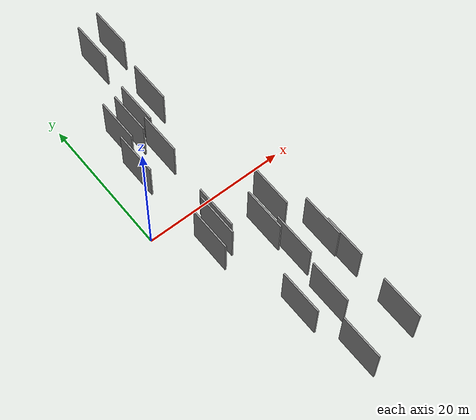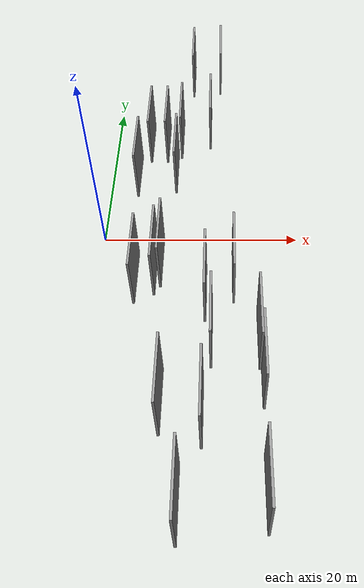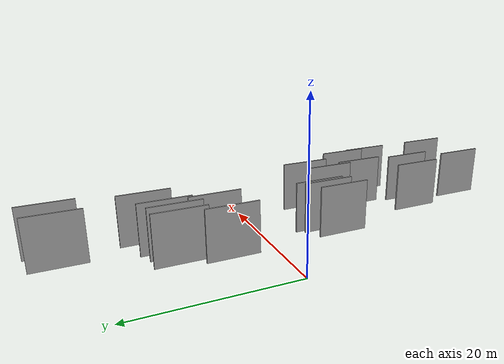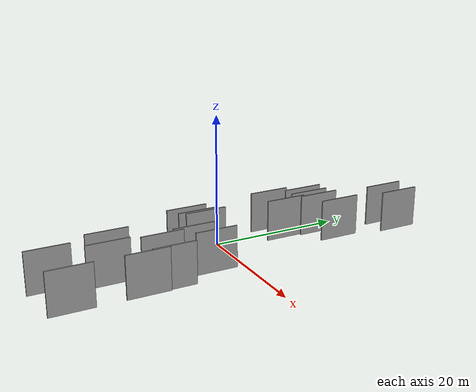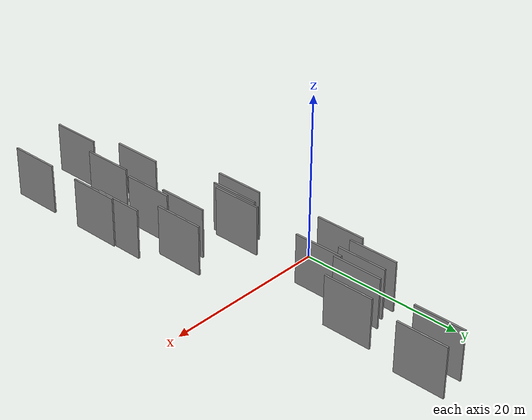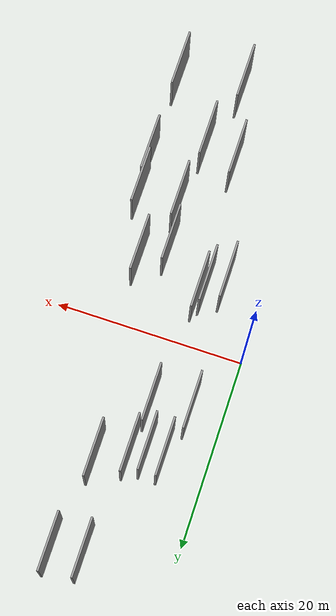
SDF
<sdf version="1.6">
 <world name="default">
  <scene>
   <sky><clouds><speed>12</speed></clouds></sky>
   <ambient>0.4 0.4 0.4 1</ambient>
   <background>0.7 0.7 0.7 1</background>
   <shadows>1</shadows>
  </scene>
  <gravity>0 0 -9.8066</gravity>
  <magnetic_field>6e-06 2.3e-05 -4.2e-05</magnetic_field>
  <physics default="0" name="default_physics" type="ode">
   <ode>
    <solver>
     <type>quick</type>
     <iters>10</iters>
     <sor>1.0</sor>
     <use_dynamic_moi_rescaling>0</use_dynamic_moi_rescaling>
    </solver>
    <constraints>
     <cfm>0</cfm>
     <erp>0.2</erp>
     <contact_max_correcting_vel>100</contact_max_correcting_vel>
     <contact_surface_layer>0.001</contact_surface_layer>
    </constraints>
   </ode>
   <max_step_size>0.004</max_step_size>
   <real_time_factor>1</real_time_factor>
   <real_time_update_rate>250</real_time_update_rate>
  </physics>
  <light name="sun" type="directional">
   <pose>0 0 10 0 0 0</pose>
   <diffuse>0.8 0.8 0.8 1</diffuse>
   <specular>0.2 0.2 0.2 1</specular>
   <attenuation>
    <range>1000</range>
    <constant>0.9</constant>
    <linear>0.01</linear>
    <quadratic>0.001</quadratic>
   </attenuation>
   <direction>-0.5 0.1 -0.9</direction>
  </light>
  <model name="grey_wall_1">
   <static>1</static>
   <pose>10.5334 -20.5578 2.5 0.000000 0.000000 1.570796</pose>
   <link name="link">
    <pose>0 0 3.00 0 0 0</pose>
    <collision name="collision"><geometry><box><size>6.00 0.2 6.00</size></box></geometry></collision>
    <visual name="visual">
     <cast_shadows>0</cast_shadows>
     <geometry><box><size>6.00 0.2 6.00</size></box></geometry>
     <material>
      <script>
       <uri>model://grey_wall/materials/scripts</uri>
       <uri>model://grey_wall/materials/textures</uri>
       <name>vrc/grey_wall</name>
      </script>
     </material>
    </visual>
   </link>
  </model>
  <model name="grey_wall_2">
   <static>1</static>
   <pose>7.7488 12.8245 2.5 0.000000 0.000000 1.570796</pose>
   <link name="link">
    <pose>0 0 3.00 0 0 0</pose>
    <collision name="collision"><geometry><box><size>6.00 0.2 6.00</size></box></geometry></collision>
    <visual name="visual">
     <cast_shadows>0</cast_shadows>
     <geometry><box><size>6.00 0.2 6.00</size></box></geometry>
     <material>
      <script>
       <uri>model://grey_wall/materials/scripts</uri>
       <uri>model://grey_wall/materials/textures</uri>
       <name>vrc/grey_wall</name>
      </script>
     </material>
    </visual>
   </link>
  </model>
  <model name="grey_wall_3">
   <static>1</static>
   <pose>8.8190 23.7844 2.5 0.000000 0.000000 1.570796</pose>
   <link name="link">
    <pose>0 0 3.00 0 0 0</pose>
    <collision name="collision"><geometry><box><size>6.00 0.2 6.00</size></box></geometry></collision>
    <visual name="visual">
     <cast_shadows>0</cast_shadows>
     <geometry><box><size>6.00 0.2 6.00</size></box></geometry>
     <material>
      <script>
       <uri>model://grey_wall/materials/scripts</uri>
       <uri>model://grey_wall/materials/textures</uri>
       <name>vrc/grey_wall</name>
      </script>
     </material>
    </visual>
   </link>
  </model>
  <model name="grey_wall_4">
   <static>1</static>
   <pose>3.9841 -6.7538 2.5 0.000000 0.000000 1.570796</pose>
   <link name="link">
    <pose>0 0 3.00 0 0 0</pose>
    <collision name="collision"><geometry><box><size>6.00 0.2 6.00</size></box></geometry></collision>
    <visual name="visual">
     <cast_shadows>0</cast_shadows>
     <geometry><box><size>6.00 0.2 6.00</size></box></geometry>
     <material>
      <script>
       <uri>model://grey_wall/materials/scripts</uri>
       <uri>model://grey_wall/materials/textures</uri>
       <name>vrc/grey_wall</name>
      </script>
     </material>
    </visual>
   </link>
  </model>
  <model name="grey_wall_5">
   <static>1</static>
   <pose>10.9122 14.3691 2.5 0.000000 0.000000 1.570796</pose>
   <link name="link">
    <pose>0 0 3.00 0 0 0</pose>
    <collision name="collision"><geometry><box><size>6.00 0.2 6.00</size></box></geometry></collision>
    <visual name="visual">
     <cast_shadows>0</cast_shadows>
     <geometry><box><size>6.00 0.2 6.00</size></box></geometry>
     <material>
      <script>
       <uri>model://grey_wall/materials/scripts</uri>
       <uri>model://grey_wall/materials/textures</uri>
       <name>vrc/grey_wall</name>
      </script>
     </material>
    </visual>
   </link>
  </model>
  <model name="grey_wall_6">
   <static>1</static>
   <pose>13.2713 -6.6503 2.5 0.000000 0.000000 1.570796</pose>
   <link name="link">
    <pose>0 0 3.00 0 0 0</pose>
    <collision name="collision"><geometry><box><size>6.00 0.2 6.00</size></box></geometry></collision>
    <visual name="visual">
     <cast_shadows>0</cast_shadows>
     <geometry><box><size>6.00 0.2 6.00</size></box></geometry>
     <material>
      <script>
       <uri>model://grey_wall/materials/scripts</uri>
       <uri>model://grey_wall/materials/textures</uri>
       <name>vrc/grey_wall</name>
      </script>
     </material>
    </visual>
   </link>
  </model>
  <model name="grey_wall_7">
   <static>1</static>
   <pose>15.6652 -17.1908 2.5 0.000000 0.000000 1.570796</pose>
   <link name="link">
    <pose>0 0 3.00 0 0 0</pose>
    <collision name="collision"><geometry><box><size>6.00 0.2 6.00</size></box></geometry></collision>
    <visual name="visual">
     <cast_shadows>0</cast_shadows>
     <geometry><box><size>6.00 0.2 6.00</size></box></geometry>
     <material>
      <script>
       <uri>model://grey_wall/materials/scripts</uri>
       <uri>model://grey_wall/materials/textures</uri>
       <name>vrc/grey_wall</name>
      </script>
     </material>
    </visual>
   </link>
  </model>
  <model name="grey_wall_8">
   <static>1</static>
   <pose>15.4649 -13.5422 2.5 0.000000 0.000000 1.570796</pose>
   <link name="link">
    <pose>0 0 3.00 0 0 0</pose>
    <collision name="collision"><geometry><box><size>6.00 0.2 6.00</size></box></geometry></collision>
    <visual name="visual">
     <cast_shadows>0</cast_shadows>
     <geometry><box><size>6.00 0.2 6.00</size></box></geometry>
     <material>
      <script>
       <uri>model://grey_wall/materials/scripts</uri>
       <uri>model://grey_wall/materials/textures</uri>
       <name>vrc/grey_wall</name>
      </script>
     </material>
    </visual>
   </link>
  </model>
  <model name="grey_wall_9">
   <static>1</static>
   <pose>8.7912 -27.8164 2.5 0.000000 0.000000 1.570796</pose>
   <link name="link">
    <pose>0 0 3.00 0 0 0</pose>
    <collision name="collision"><geometry><box><size>6.00 0.2 6.00</size></box></geometry></collision>
    <visual name="visual">
     <cast_shadows>0</cast_shadows>
     <geometry><box><size>6.00 0.2 6.00</size></box></geometry>
     <material>
      <script>
       <uri>model://grey_wall/materials/scripts</uri>
       <uri>model://grey_wall/materials/textures</uri>
       <name>vrc/grey_wall</name>
      </script>
     </material>
    </visual>
   </link>
  </model>
  <model name="grey_wall_10">
   <static>1</static>
   <pose>10.6417 -8.6796 2.5 0.000000 0.000000 1.570796</pose>
   <link name="link">
    <pose>0 0 3.00 0 0 0</pose>
    <collision name="collision"><geometry><box><size>6.00 0.2 6.00</size></box></geometry></collision>
    <visual name="visual">
     <cast_shadows>0</cast_shadows>
     <geometry><box><size>6.00 0.2 6.00</size></box></geometry>
     <material>
      <script>
       <uri>model://grey_wall/materials/scripts</uri>
       <uri>model://grey_wall/materials/textures</uri>
       <name>vrc/grey_wall</name>
      </script>
     </material>
    </visual>
   </link>
  </model>
  <model name="grey_wall_11">
   <static>1</static>
   <pose>12.0382 24.2024 2.5 0.000000 0.000000 1.570796</pose>
   <link name="link">
    <pose>0 0 3.00 0 0 0</pose>
    <collision name="collision"><geometry><box><size>6.00 0.2 6.00</size></box></geometry></collision>
    <visual name="visual">
     <cast_shadows>0</cast_shadows>
     <geometry><box><size>6.00 0.2 6.00</size></box></geometry>
     <material>
      <script>
       <uri>model://grey_wall/materials/scripts</uri>
       <uri>model://grey_wall/materials/textures</uri>
       <name>vrc/grey_wall</name>
      </script>
     </material>
    </visual>
   </link>
  </model>
  <model name="grey_wall_12">
   <static>1</static>
   <pose>11.2279 -13.4062 2.5 0.000000 0.000000 1.570796</pose>
   <link name="link">
    <pose>0 0 3.00 0 0 0</pose>
    <collision name="collision"><geometry><box><size>6.00 0.2 6.00</size></box></geometry></collision>
    <visual name="visual">
     <cast_shadows>0</cast_shadows>
     <geometry><box><size>6.00 0.2 6.00</size></box></geometry>
     <material>
      <script>
       <uri>model://grey_wall/materials/scripts</uri>
       <uri>model://grey_wall/materials/textures</uri>
       <name>vrc/grey_wall</name>
      </script>
     </material>
    </visual>
   </link>
  </model>
  <model name="grey_wall_13">
   <static>1</static>
   <pose>15.5992 -27.0342 2.5 0.000000 0.000000 1.570796</pose>
   <link name="link">
    <pose>0 0 3.00 0 0 0</pose>
    <collision name="collision"><geometry><box><size>6.00 0.2 6.00</size></box></geometry></collision>
    <visual name="visual">
     <cast_shadows>0</cast_shadows>
     <geometry><box><size>6.00 0.2 6.00</size></box></geometry>
     <material>
      <script>
       <uri>model://grey_wall/materials/scripts</uri>
       <uri>model://grey_wall/materials/textures</uri>
       <name>vrc/grey_wall</name>
      </script>
     </material>
    </visual>
   </link>
  </model>
  <model name="grey_wall_14">
   <static>1</static>
   <pose>6.1909 12.1441 2.5 0.000000 0.000000 1.570796</pose>
   <link name="link">
    <pose>0 0 3.00 0 0 0</pose>
    <collision name="collision"><geometry><box><size>6.00 0.2 6.00</size></box></geometry></collision>
    <visual name="visual">
     <cast_shadows>0</cast_shadows>
     <geometry><box><size>6.00 0.2 6.00</size></box></geometry>
     <material>
      <script>
       <uri>model://grey_wall/materials/scripts</uri>
       <uri>model://grey_wall/materials/textures</uri>
       <name>vrc/grey_wall</name>
      </script>
     </material>
    </visual>
   </link>
  </model>
  <model name="grey_wall_15">
   <static>1</static>
   <pose>4.3948 12.1530 2.5 0.000000 0.000000 1.570796</pose>
   <link name="link">
    <pose>0 0 3.00 0 0 0</pose>
    <collision name="collision"><geometry><box><size>6.00 0.2 6.00</size></box></geometry></collision>
    <visual name="visual">
     <cast_shadows>0</cast_shadows>
     <geometry><box><size>6.00 0.2 6.00</size></box></geometry>
     <material>
      <script>
       <uri>model://grey_wall/materials/scripts</uri>
       <uri>model://grey_wall/materials/textures</uri>
       <name>vrc/grey_wall</name>
      </script>
     </material>
    </visual>
   </link>
  </model>
  <model name="grey_wall_16">
   <static>1</static>
   <pose>6.3541 -4.8810 2.5 0.000000 0.000000 1.570796</pose>
   <link name="link">
    <pose>0 0 3.00 0 0 0</pose>
    <collision name="collision"><geometry><box><size>6.00 0.2 6.00</size></box></geometry></collision>
    <visual name="visual">
     <cast_shadows>0</cast_shadows>
     <geometry><box><size>6.00 0.2 6.00</size></box></geometry>
     <material>
      <script>
       <uri>model://grey_wall/materials/scripts</uri>
       <uri>model://grey_wall/materials/textures</uri>
       <name>vrc/grey_wall</name>
      </script>
     </material>
    </visual>
   </link>
  </model>
  <model name="grey_wall_17">
   <static>1</static>
   <pose>7.0522 -19.5094 2.5 0.000000 0.000000 1.570796</pose>
   <link name="link">
    <pose>0 0 3.00 0 0 0</pose>
    <collision name="collision"><geometry><box><size>6.00 0.2 6.00</size></box></geometry></collision>
    <visual name="visual">
     <cast_shadows>0</cast_shadows>
     <geometry><box><size>6.00 0.2 6.00</size></box></geometry>
     <material>
      <script>
       <uri>model://grey_wall/materials/scripts</uri>
       <uri>model://grey_wall/materials/textures</uri>
       <name>vrc/grey_wall</name>
      </script>
     </material>
    </visual>
   </link>
  </model>
  <model name="grey_wall_18">
   <static>1</static>
   <pose>7.3372 7.4726 2.5 0.000000 0.000000 1.570796</pose>
   <link name="link">
    <pose>0 0 3.00 0 0 0</pose>
    <collision name="collision"><geometry><box><size>6.00 0.2 6.00</size></box></geometry></collision>
    <visual name="visual">
     <cast_shadows>0</cast_shadows>
     <geometry><box><size>6.00 0.2 6.00</size></box></geometry>
     <material>
      <script>
       <uri>model://grey_wall/materials/scripts</uri>
       <uri>model://grey_wall/materials/textures</uri>
       <name>vrc/grey_wall</name>
      </script>
     </material>
    </visual>
   </link>
  </model>
  <model name="grey_wall_19">
   <static>1</static>
   <pose>3.3163 6.9529 2.5 0.000000 0.000000 1.570796</pose>
   <link name="link">
    <pose>0 0 3.00 0 0 0</pose>
    <collision name="collision"><geometry><box><size>6.00 0.2 6.00</size></box></geometry></collision>
    <visual name="visual">
     <cast_shadows>0</cast_shadows>
     <geometry><box><size>6.00 0.2 6.00</size></box></geometry>
     <material>
      <script>
       <uri>model://grey_wall/materials/scripts</uri>
       <uri>model://grey_wall/materials/textures</uri>
       <name>vrc/grey_wall</name>
      </script>
     </material>
    </visual>
   </link>
  </model>
  <model name="grey_wall_20">
   <static>1</static>
   <pose>5.8026 -5.7648 2.5 0.000000 0.000000 1.570796</pose>
   <link name="link">
    <pose>0 0 3.00 0 0 0</pose>
    <collision name="collision"><geometry><box><size>6.00 0.2 6.00</size></box></geometry></collision>
    <visual name="visual">
     <cast_shadows>0</cast_shadows>
     <geometry><box><size>6.00 0.2 6.00</size></box></geometry>
     <material>
      <script>
       <uri>model://grey_wall/materials/scripts</uri>
       <uri>model://grey_wall/materials/textures</uri>
       <name>vrc/grey_wall</name>
      </script>
     </material>
    </visual>
   </link>
  </model>
 </world>
</sdf>
